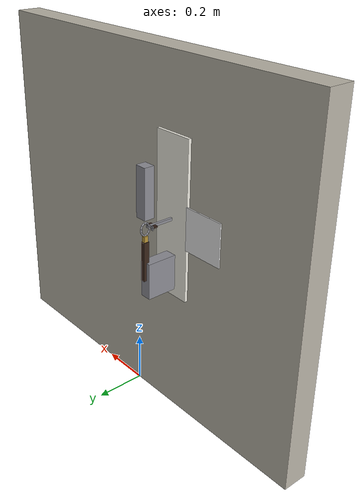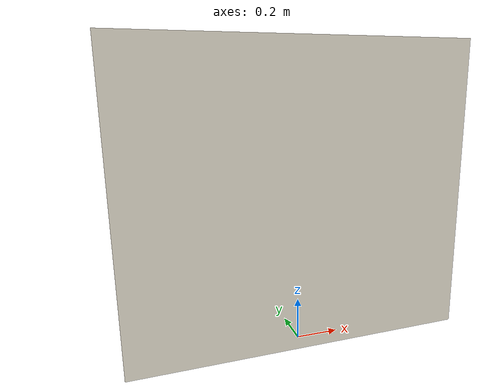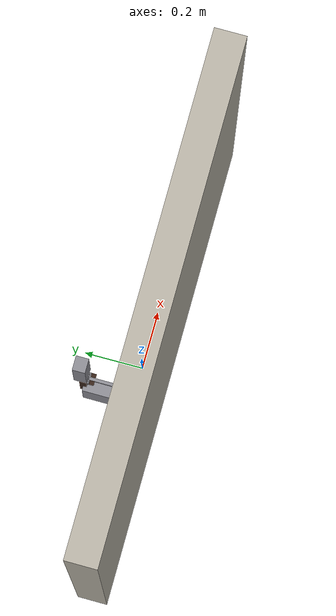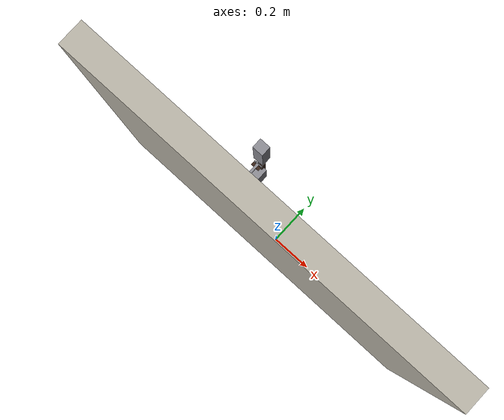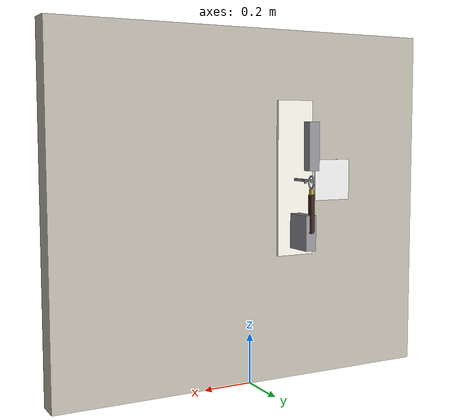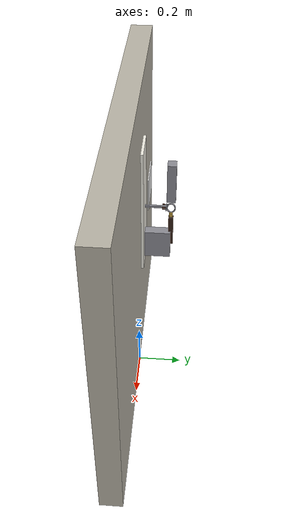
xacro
<?xml version="1.0"?>
<robot name="chave_seccionadora_fixture" xmlns:xacro="http://ros.org/wiki/xacro">

  <xacro:include filename="$(find b166er_robot)/urdf/fixtures/chave_seccionadora_lf.urdf.xacro"/>
  <xacro:include filename="$(find b166er_robot)/urdf/fixtures/apriltag_mount.urdf.xacro"/>

  <!-- ═══ Parâmetros da parede ═══ -->
  <xacro:property name="wall_width" value="1.6"/>
  <xacro:property name="wall_thickness" value="0.10"/>
  <xacro:property name="wall_height" value="1.40"/>
  <xacro:property name="chave_x_offset" value="-0.20"/>

  <xacro:property name="tag_olhal_dx" value="0.17"/>
  <xacro:property name="tag_x_offset" value="${chave_x_offset - tag_olhal_dx}"/>
  <xacro:property name="tag_black_size" value="0.132"/>

  <xacro:property name="olhal_z" value="0.805"/>
  <xacro:property name="chave_pivot_z"
    value="${olhal_z - 0.200}"/>  <!-- 0,605 m — lâmina VERTICAL na posição fechada -->

  <!-- Mesma altura do olhal (medido). Era 1.030. -->
  <xacro:property name="tag_mount_z" value="${olhal_z}"/>

  <!-- ═══ Parede: base no chão, face frontal (mounting) em Y=0 do frame
       local, corpo se estendendo para -Y (atrás) ═══ -->
  <link name="wall_link">
    <visual>
      <origin xyz="0 ${-wall_thickness/2} ${wall_height/2}"/>
      <geometry><box size="${wall_width} ${wall_thickness} ${wall_height}"/></geometry>
      <material name="wall_concrete"><color rgba="0.72 0.70 0.65 1"/></material>
    </visual>
    <collision>
      <origin xyz="0 ${-wall_thickness/2} ${wall_height/2}"/>
      <geometry><box size="${wall_width} ${wall_thickness} ${wall_height}"/></geometry>
    </collision>
    <inertial>
      <mass value="50.0"/>
      <inertia ixx="1.0" ixy="0" ixz="0" iyy="1.0" iyz="0" izz="1.0"/>
    </inertial>
  </link>

  <gazebo reference="wall_link">
    <material>Gazebo/Grey</material>
    <selfCollide>true</selfCollide>
  </gazebo>

  <xacro:chave_seccionadora_lf parent="wall_link" prefix="chave_"
    xyz="${chave_x_offset} 0 ${chave_pivot_z}" rpy="0 0 0"/>

  <xacro:apriltag_mount parent="wall_link" prefix="tag_"
    xyz="${tag_x_offset} 0 ${tag_mount_z}" rpy="0 0 0"
    black_size="${tag_black_size}"/>

  <link name="world"/>
  <joint name="world_anchor" type="fixed">
    <parent link="world"/>
    <child link="wall_link"/>
    <origin xyz="0 0 0" rpy="0 0 0"/>
  </joint>

</robot>

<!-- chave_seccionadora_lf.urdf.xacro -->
<robot xmlns:xacro="http://ros.org/wiki/xacro">

  <xacro:macro name="chave_seccionadora_lf" params="parent prefix:=chave_ xyz:='0 0 0' rpy:='0 0 0'">

    <!-- MEDIDO NA BANCADA REAL em 2026-08-26 (olhal-dimension.png):
         centro do olhal a 80,5 cm do chão. Era 0,810 por estimativa. -->
    <xacro:property name="olhal_height" value="0.805"/>
    <xacro:property name="blade_length" value="0.200"/>      <!-- pivô → olhal -->
    <xacro:property name="wall_standoff" value="0.13"/>

    <!-- Placa de fundo (a branca da foto, parafusada na parede). -->
    <xacro:property name="plate_w" value="0.16"/>
    <xacro:property name="plate_h" value="0.62"/>
    <xacro:property name="plate_t" value="0.012"/>

    <xacro:property name="ring_ay" value="0.018"/>     <!-- semi-eixo horizontal (perpendicular à parede) -->
    <xacro:property name="ring_az" value="0.023"/>     <!-- semi-eixo vertical -->
    <xacro:property name="ring_t" value="0.006"/>      <!-- bitola do arame -->
    <xacro:property name="ring_seg" value="12"/>       <!-- segmentos do oval -->

    <xacro:property name="olhal_colide" value="true"/>
    <xacro:property name="lamina_colide" value="true"/>

    <!-- Curso máximo da lingueta do gatilho (ver a seção LINGUETA). Fica
         aqui em cima porque o comprimento da barra da lâmina depende
         dele. -->
    <xacro:property name="lingueta_curso" value="0.020"/>

    <!-- Fechada: lâmina vertical, olhal direto acima do pivô. -->
    <xacro:property name="pivot_z" value="${olhal_height - blade_length}"/>

    <!-- ═══ Placa de fundo ═══ -->
    <link name="${prefix}plate">
      <visual>
        <origin xyz="0 ${plate_t/2} ${plate_h/2 - 0.10}"/>
        <geometry><box size="${plate_w} ${plate_t} ${plate_h}"/></geometry>
        <material name="switch_plate"><color rgba="0.93 0.92 0.88 1"/></material>
      </visual>
      <collision>
        <origin xyz="0 ${plate_t/2} ${plate_h/2 - 0.10}"/>
        <geometry><box size="${plate_w} ${plate_t} ${plate_h}"/></geometry>
      </collision>
      <inertial>
        <mass value="1.0"/>
        <inertia ixx="0.01" ixy="0" ixz="0" iyy="0.01" iyz="0" izz="0.01"/>
      </inertial>
    </link>

    <joint name="${prefix}plate_joint" type="fixed">
      <parent link="${parent}"/>
      <child link="${prefix}plate"/>
      <origin xyz="${xyz}" rpy="${rpy}"/>
    </joint>

    <link name="${prefix}bracket">
      <visual>
        <origin xyz="0 ${wall_standoff/2} 0"/>
        <geometry><box size="0.045 ${wall_standoff} 0.14"/></geometry>
        <material name="galvanized"><color rgba="0.55 0.55 0.58 1"/></material>
      </visual>
      <collision>
        <origin xyz="0 ${wall_standoff/2} 0"/>
        <geometry><box size="0.045 ${wall_standoff} 0.14"/></geometry>
      </collision>
      <inertial>
        <mass value="0.4"/>
        <inertia ixx="0.001" ixy="0" ixz="0" iyy="0.001" iyz="0" izz="0.001"/>
      </inertial>
    </link>

    <joint name="${prefix}bracket_joint" type="fixed">
      <parent link="${prefix}plate"/>
      <child link="${prefix}bracket"/>
      <origin xyz="0 0 0" rpy="0 0 0"/>
    </joint>

    <!-- ═══ Bracket superior = contato fixo (a lâmina fechada encosta
         nele) ═══ -->
    <xacro:property name="terminal_prof" value="0.040"/>

    <link name="${prefix}fixed_terminal">
      <visual>
        <origin xyz="0 ${wall_standoff} 0"/>
        <geometry><box size="0.045 ${terminal_prof} 0.19"/></geometry>
        <material name="galvanized"/>
      </visual>
      <collision>
        <origin xyz="0 ${wall_standoff} 0"/>
        <geometry><box size="0.045 ${terminal_prof} 0.19"/></geometry>
      </collision>
      <inertial>
        <mass value="0.4"/>
        <inertia ixx="0.001" ixy="0" ixz="0" iyy="0.001" iyz="0" izz="0.001"/>
      </inertial>
    </link>

    <joint name="${prefix}fixed_terminal_joint" type="fixed">
      <parent link="${prefix}plate"/>
      <child link="${prefix}fixed_terminal"/>
      <origin xyz="0 0 ${blade_length + 0.14}" rpy="0 0 0"/>
    </joint>

    <xacro:property name="blade_bar" value="${blade_length - ring_az - lingueta_curso - 0.005}"/>
    <link name="${prefix}blade">
      <visual>
        <origin xyz="0 0 ${blade_bar/2}"/>
        <geometry><box size="0.016 0.022 ${blade_bar}"/></geometry>
        <material name="switch_dark"><color rgba="0.22 0.14 0.10 1"/></material>
      </visual>
      <xacro:if value="${lamina_colide}">
        <collision>
          <origin xyz="0 0 ${blade_bar/2}"/>
          <geometry><box size="0.0096 0.0132 ${blade_bar}"/></geometry>
        </collision>
      </xacro:if>
      <inertial>
        <mass value="0.5"/>
        <inertia ixx="0.001" ixy="0" ixz="0" iyy="0.001" iyz="0" izz="0.0002"/>
      </inertial>
    </link>

    <joint name="${prefix}blade_joint" type="revolute">
      <parent link="${prefix}bracket"/>
      <child link="${prefix}blade"/>
      <origin xyz="0 ${wall_standoff} 0" rpy="0 0 0"/>
      <axis xyz="-1 0 0"/>
      <limit lower="0.0" upper="0.60" effort="40" velocity="1.0"/>
      <dynamics damping="0.5" friction="1.5"/>
    </joint>

    <xacro:property name="lingueta_k" value="200.0"/>

    <link name="${prefix}lingueta">
      <visual>
        <origin xyz="0 0 ${blade_length - ring_az - 0.0225}"/>
        <geometry><box size="0.012 0.016 0.039"/></geometry>
        <material name="brass"><color rgba="0.72 0.58 0.22 1"/></material>
      </visual>
      <!-- ABA, para o lado da parede -->
      <visual>
        <origin xyz="0 -0.0325 ${blade_length + 0.005}"/>
        <geometry><box size="0.036 0.015 0.006"/></geometry>
        <material name="switch_dark"/>
      </visual>
      <collision>
        <origin xyz="0 -0.0325 ${blade_length + 0.005}"/>
        <geometry><box size="0.036 0.015 0.006"/></geometry>
      </collision>
      <inertial>
        <mass value="0.05"/>
        <inertia ixx="0.00003" ixy="0" ixz="0" iyy="0.00003" iyz="0" izz="0.00001"/>
      </inertial>
    </link>

    <joint name="${prefix}lingueta_joint" type="prismatic">
      <parent link="${prefix}blade"/>
      <child link="${prefix}lingueta"/>
      <origin xyz="0 0 0" rpy="0 0 0"/>
      <axis xyz="0 0 -1"/>   <!-- positivo = olhal DESCE -->
      <limit lower="0.0" upper="${lingueta_curso}" effort="50" velocity="0.5"/>
      <dynamics damping="5.0" friction="0.2"/>
    </joint>
    <gazebo reference="${prefix}lingueta_joint">
      <implicitSpringDamper>true</implicitSpringDamper>
      <springStiffness>${lingueta_k}</springStiffness>
      <springReference>-0.010</springReference>
    </gazebo>

    <link name="${prefix}laco">
      <visual>
        <origin xyz="0 ${-(wall_standoff + 0.021)/2} 0.005"/>
        <geometry><box size="0.010 ${wall_standoff - 0.021} 0.010"/></geometry>
        <material name="galvanized"/>
      </visual>
      <visual>
        <origin xyz="0 -0.021 0.005" rpy="0 ${pi/2} 0"/>
        <geometry><cylinder radius="0.003" length="0.036"/></geometry>
        <material name="galvanized"/>
      </visual>
      <visual>
        <origin xyz="0.014 -0.021 0.003"/>
        <geometry><box size="0.008 0.004 0.016"/></geometry>
        <material name="galvanized"/>
      </visual>
      <visual>
        <origin xyz="-0.014 -0.021 0.003"/>
        <geometry><box size="0.008 0.004 0.016"/></geometry>
        <material name="galvanized"/>
      </visual>
      <collision>
        <origin xyz="0.014 -0.021 0.003"/>
        <geometry><box size="0.008 0.004 0.016"/></geometry>
      </collision>
      <collision>
        <origin xyz="-0.014 -0.021 0.003"/>
        <geometry><box size="0.008 0.004 0.016"/></geometry>
      </collision>
      <inertial>
        <mass value="0.05"/>
        <inertia ixx="0.00001" ixy="0" ixz="0" iyy="0.00001" iyz="0" izz="0.00001"/>
      </inertial>
    </link>

    <joint name="${prefix}laco_joint" type="fixed">
      <parent link="${prefix}plate"/>
      <child link="${prefix}laco"/>
      <origin xyz="0 ${wall_standoff} ${blade_length}" rpy="0 0 0"/>
    </joint>

    <link name="${prefix}olhal_link">
      <xacro:macro name="ring_seg_vis" params="i">
        <xacro:property name="a"  value="${2*pi*i/ring_seg}"/>
        <xacro:property name="h"  value="${pi/ring_seg}"/>
        <xacro:property name="dy" value="${ring_ay*(cos(a+h) - cos(a-h))}"/>
        <xacro:property name="dz" value="${ring_az*(sin(a+h) - sin(a-h))}"/>
        <xacro:property name="seg_len" value="${1.15*sqrt(dy*dy + dz*dz)}"/>
        <xacro:property name="seg_roll" value="${atan2(-dy, dz)}"/>
        <visual>
          <origin xyz="0 ${ring_ay*cos(a)} ${ring_az*sin(a)}"
                  rpy="${seg_roll} 0 0"/>
          <geometry>
            <cylinder radius="${ring_t/2}" length="${seg_len}"/>
          </geometry>
          <material name="galvanized"/>
        </visual>
        <xacro:if value="${olhal_colide}">
          <collision>
            <origin xyz="0 ${ring_ay*cos(a)} ${ring_az*sin(a)}"
                    rpy="${seg_roll} 0 0"/>
            <geometry>
              <cylinder radius="${ring_t/2}" length="${seg_len}"/>
            </geometry>
          </collision>
        </xacro:if>
      </xacro:macro>
      <xacro:ring_seg_vis i="0"/>
      <xacro:ring_seg_vis i="1"/>
      <xacro:ring_seg_vis i="2"/>
      <xacro:ring_seg_vis i="3"/>
      <xacro:ring_seg_vis i="4"/>
      <xacro:ring_seg_vis i="5"/>
      <xacro:ring_seg_vis i="6"/>
      <xacro:ring_seg_vis i="7"/>
      <xacro:ring_seg_vis i="8"/>
      <xacro:ring_seg_vis i="9"/>
      <xacro:ring_seg_vis i="10"/>
      <xacro:ring_seg_vis i="11"/>
      <inertial>
        <mass value="0.08"/>
        <inertia ixx="0.00002" ixy="0" ixz="0" iyy="0.00002" iyz="0" izz="0.00002"/>
      </inertial>
    </link>

    <joint name="${prefix}olhal_joint" type="fixed">
      <parent link="${prefix}lingueta"/>
      <child link="${prefix}olhal_link"/>
      <origin xyz="0 0 ${blade_length}" rpy="0 0 0"/>
    </joint>

    <gazebo reference="${prefix}plate">
      <material>Gazebo/White</material>
    </gazebo>
    <gazebo reference="${prefix}bracket">
      <material>Gazebo/Grey</material>
    </gazebo>
    <gazebo reference="${prefix}fixed_terminal">
      <material>Gazebo/Grey</material>
    </gazebo>
    <gazebo reference="${prefix}blade">
      <material>Gazebo/DarkGrey</material>
    </gazebo>
    <gazebo reference="${prefix}olhal_link">
      <material>Gazebo/Orange</material>
    </gazebo>
    <gazebo reference="${prefix}lingueta">
      <material>Gazebo/Gold</material>
      <selfCollide>true</selfCollide>
    </gazebo>
    <gazebo reference="${prefix}laco">
      <material>Gazebo/Grey</material>
      <selfCollide>true</selfCollide>
    </gazebo>

  </xacro:macro>

</robot>

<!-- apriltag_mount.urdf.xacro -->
<robot xmlns:xacro="http://ros.org/wiki/xacro">

  <xacro:macro name="apriltag_mount" params="parent prefix:=tag_ xyz:='0 0 0' rpy:='0 0 0' black_size:=0.132">

    <xacro:property name="tag_black_size" value="${black_size}"/>
    <xacro:property name="tag_size" value="${tag_black_size/0.8}"/>  <!-- placa: preto + quiet zone da textura -->
    <xacro:property name="tag_plate_thickness" value="0.005"/>
    <xacro:property name="wall_standoff" value="0.02"/>

    <!-- Placa da tag, fixada direto na parede via o joint pai (xyz do
         macro já inclui a altura de 1.030 m — ver chave_com_tag.urdf.xacro). -->
    <link name="${prefix}plate">
      <visual>
        <origin xyz="0 ${wall_standoff} 0"/>
        <geometry><box size="${tag_size} ${tag_plate_thickness} ${tag_size}"/></geometry>
        <material name="AprilTag/36h11_id0"><color rgba="0.9 0.9 0.9 1"/></material>
      </visual>
      <collision>
        <origin xyz="0 ${wall_standoff} 0"/>
        <geometry><box size="${tag_size} ${tag_plate_thickness} ${tag_size}"/></geometry>
      </collision>
      <inertial>
        <mass value="0.1"/>
        <inertia ixx="0.0002" ixy="0" ixz="0" iyy="0.0002" iyz="0" izz="0.0002"/>
      </inertial>
    </link>

    <joint name="${prefix}plate_joint" type="fixed">
      <parent link="${parent}"/>
      <child link="${prefix}plate"/>
      <origin xyz="${xyz}" rpy="${rpy}"/>
    </joint>

    <gazebo reference="${prefix}plate">
      <material>AprilTag/36h11_id0</material>
    </gazebo>

  </xacro:macro>

</robot>
